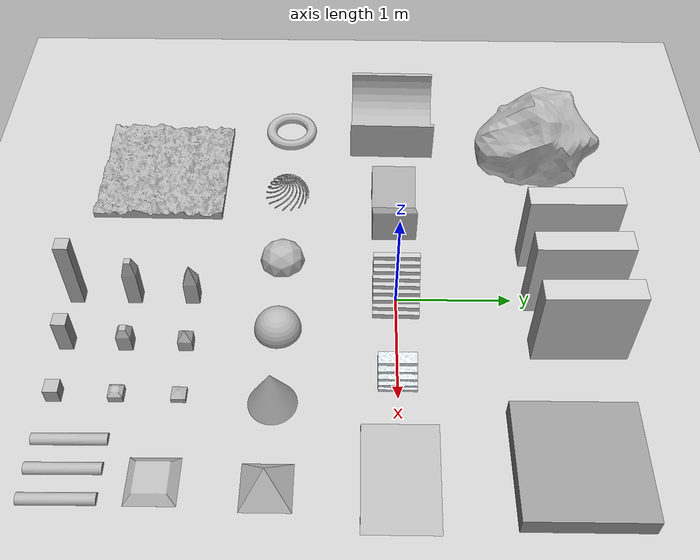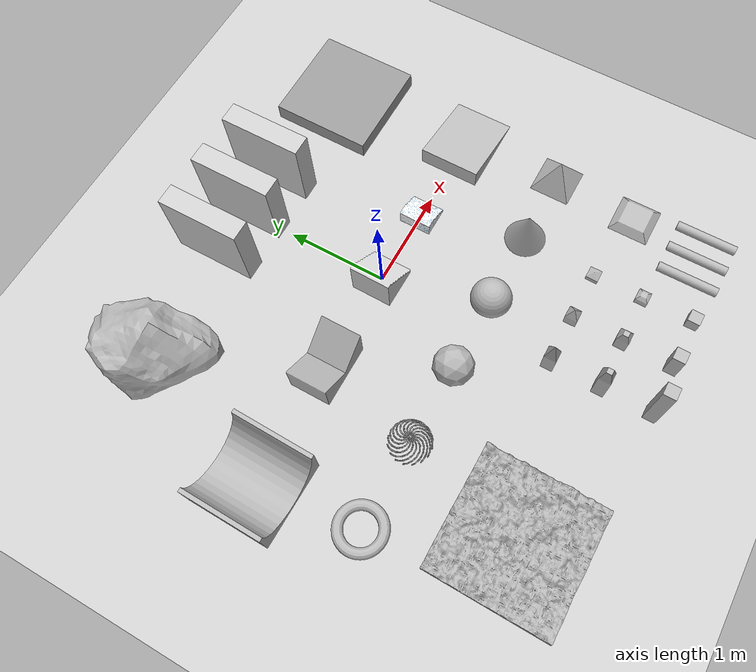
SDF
<sdf version="1.7">
 <world name="default">
  <light name="sun" type="directional">
   <pose>0 0 10 0 -0 0</pose>
   <diffuse>0.8 0.8 0.8 1</diffuse>
   <specular>0.2 0.2 0.2 1</specular>
   <attenuation>
    <range>1000</range>
    <constant>0.9</constant>
    <linear>0.01</linear>
    <quadratic>0.001</quadratic>
   </attenuation>
   <direction>-0.5 0.1 -0.9</direction>
   <spot><inner_angle>0</inner_angle><outer_angle>0</outer_angle><falloff>0</falloff></spot>
  </light>
  <model name="ground_plane">
   <static>1</static>
   <link name="link">
    <collision name="collision">
     <geometry><plane><normal>0 0 1</normal><size>0.032 0.032</size></plane></geometry>
     <surface>
      <contact><collide_bitmask>65535</collide_bitmask></contact>
      <friction><ode><mu>100</mu><mu2>50</mu2></ode></friction>
     </surface>
    </collision>
    <visual name="visual">
     <cast_shadows>0</cast_shadows>
     <geometry><plane><normal>0 0 1</normal><size>100 100</size></plane></geometry>
     <material>
      <script><uri>file://media/materials/scripts/gazebo.material</uri><name>Gazebo/Grey</name></script>
     </material>
    </visual>
   </link>
  </model>
  <gravity>0 0 -9.8</gravity>
  <magnetic_field>6e-06 2.3e-05 -4.2e-05</magnetic_field>
  <atmosphere type="adiabatic"/>
  <physics type="ode">
   <max_step_size>0.001</max_step_size>
   <real_time_factor>1</real_time_factor>
   <real_time_update_rate>1000</real_time_update_rate>
  </physics>
  <scene><ambient>0.4 0.4 0.4 1</ambient><background>0.7 0.7 0.7 1</background><shadows>1</shadows></scene>
  <spherical_coordinates>
   <surface_model>EARTH_WGS84</surface_model>
   <latitude_deg>0</latitude_deg>
   <longitude_deg>0</longitude_deg>
   <elevation>0</elevation>
   <heading_deg>0</heading_deg>
  </spherical_coordinates>
  <model name="parede">
   <link name="link">
    <collision name="collision">
     <geometry><mesh><scale>0.2 0.2 0.2</scale><uri>model://parede/meshes/parede.stl</uri></mesh></geometry>
    </collision>
    <visual name="visual">
     <geometry><mesh><scale>0.2 0.2 0.2</scale><uri>model://parede/meshes/parede.dae</uri></mesh></geometry>
    </visual>
    <inertial>
     <inertia><ixx>1</ixx><ixy>0</ixy><ixz>0</ixz><iyy>1</iyy><iyz>0</iyz><izz>1</izz></inertia>
     <mass>1</mass>
    </inertial>
   </link>
   <pose>0.5 1.4998 0.399995 0 -0 1.57896</pose>
  </model>
  <model name="parede_clone_0">
   <link name="link">
    <collision name="collision">
     <geometry><mesh><scale>0.2 0.2 0.2</scale><uri>model://parede/meshes/parede.stl</uri></mesh></geometry>
    </collision>
    <visual name="visual">
     <geometry><mesh><scale>0.2 0.2 0.2</scale><uri>model://parede/meshes/parede.dae</uri></mesh></geometry>
    </visual>
    <inertial>
     <inertia><ixx>1</ixx><ixy>0</ixy><ixz>0</ixz><iyy>1</iyy><iyz>0</iyz><izz>1</izz></inertia>
     <mass>1</mass>
    </inertial>
   </link>
   <pose>0 1.49981 0.399995 0 -0 1.57905</pose>
  </model>
  <model name="parede_clone_0_clone">
   <link name="link">
    <collision name="collision">
     <geometry><mesh><scale>0.2 0.2 0.2</scale><uri>model://parede/meshes/parede.stl</uri></mesh></geometry>
    </collision>
    <visual name="visual">
     <geometry><mesh><scale>0.2 0.2 0.2</scale><uri>model://parede/meshes/parede.dae</uri></mesh></geometry>
    </visual>
    <inertial>
     <inertia><ixx>1</ixx><ixy>0</ixy><ixz>0</ixz><iyy>1</iyy><iyz>0</iyz><izz>1</izz></inertia>
     <mass>1</mass>
    </inertial>
   </link>
   <pose>-0.5 1.4998 0.399995 0 -0 1.57902</pose>
  </model>
  <model name="chao_aspero">
   <link name="link">
    <collision name="collision">
     <geometry>
      <mesh><scale>0.6 0.6 0.6</scale><uri>model://chao_aspero/meshes/chao_aspero.stl</uri></mesh>
     </geometry>
    </collision>
    <visual name="visual">
     <geometry>
      <mesh><scale>0.6 0.6 0.6</scale><uri>model://chao_aspero/meshes/chao_aspero.dae</uri></mesh>
     </geometry>
    </visual>
    <inertial>
     <inertia><ixx>1</ixx><ixy>0</ixy><ixz>0</ixz><iyy>1</iyy><iyz>0</iyz><izz>1</izz></inertia>
     <mass>1</mass>
    </inertial>
   </link>
   <pose>-1.54118 -2.18697 0.06 0 -0 -0.010693</pose>
  </model>
  <model name="pilar">
   <link name="link">
    <collision name="collision">
     <geometry><mesh><scale>0.2 0.2 0.35</scale><uri>model://pilar/meshes/pilar.stl</uri></mesh></geometry>
    </collision>
    <visual name="visual">
     <geometry><mesh><scale>0.2 0.2 0.35</scale><uri>model://pilar/meshes/pilar.dae</uri></mesh></geometry>
    </visual>
    <inertial>
     <inertia><ixx>1</ixx><ixy>0</ixy><ixz>0</ixz><iyy>1</iyy><iyz>0</iyz><izz>1</izz></inertia>
     <mass>1</mass>
    </inertial>
   </link>
   <pose>0 -2.75 0.35 -1e-06 1e-06 0.00395</pose>
  </model>
  <model name="pilar_clone">
   <link name="link">
    <collision name="collision">
     <geometry><mesh><scale>0.2 0.2 0.17</scale><uri>model://pilar/meshes/pilar.stl</uri></mesh></geometry>
    </collision>
    <visual name="visual">
     <geometry><mesh><scale>0.2 0.2 0.17</scale><uri>model://pilar/meshes/pilar.dae</uri></mesh></geometry>
    </visual>
    <inertial>
     <inertia><ixx>1</ixx><ixy>0</ixy><ixz>0</ixz><iyy>1</iyy><iyz>0</iyz><izz>1</izz></inertia>
     <mass>1</mass>
    </inertial>
   </link>
   <pose>0.495132 -2.74517 0.169991 1e-06 1e-06 -0.005708</pose>
  </model>
  <model name="pilar_2">
   <link name="link">
    <collision name="collision">
     <geometry><mesh><scale>0.2 0.2 0.35</scale><uri>model://pilar_2/meshes/pilar_2.stl</uri></mesh></geometry>
    </collision>
    <visual name="visual">
     <geometry><mesh><scale>0.2 0.2 0.35</scale><uri>model://pilar_2/meshes/pilar_2.dae</uri></mesh></geometry>
    </visual>
    <inertial>
     <inertia><ixx>1</ixx><ixy>0</ixy><ixz>0</ixz><iyy>1</iyy><iyz>0</iyz><izz>1</izz></inertia>
     <mass>1</mass>
    </inertial>
   </link>
   <pose>-1e-06 -2.25 0.244991 -2e-06 -1e-06 0.005058</pose>
  </model>
  <model name="pilar_2_clone">
   <link name="link">
    <collision name="collision">
     <geometry><mesh><scale>0.2 0.2 0.07</scale><uri>model://pilar_2/meshes/pilar_2.stl</uri></mesh></geometry>
    </collision>
    <visual name="visual">
     <geometry><mesh><scale>0.2 0.2 0.07</scale><uri>model://pilar_2/meshes/pilar_2.dae</uri></mesh></geometry>
    </visual>
    <inertial>
     <inertia><ixx>1</ixx><ixy>0</ixy><ixz>0</ixz><iyy>1</iyy><iyz>0</iyz><izz>1</izz></inertia>
     <mass>1</mass>
    </inertial>
   </link>
   <pose>0.999999 -2.25 0.048991 -4e-06 -1e-06 0.002488</pose>
  </model>
  <model name="pilar_3">
   <link name="link">
    <collision name="collision">
     <geometry><mesh><scale>0.2 0.2 0.35</scale><uri>model://pilar_3/meshes/pilar_3.stl</uri></mesh></geometry>
    </collision>
    <visual name="visual">
     <geometry><mesh><scale>0.2 0.2 0.35</scale><uri>model://pilar_3/meshes/pilar_3.dae</uri></mesh></geometry>
    </visual>
    <inertial>
     <inertia><ixx>1</ixx><ixy>0</ixy><ixz>0</ixz><iyy>1</iyy><iyz>0</iyz><izz>1</izz></inertia>
     <mass>1</mass>
    </inertial>
   </link>
   <pose>-4e-06 -1.75 0.24499 0 -1e-06 0.00505</pose>
  </model>
  <model name="pilar_3_clone">
   <link name="link">
    <collision name="collision">
     <geometry><mesh><scale>0.2 0.2 0.17</scale><uri>model://pilar_3/meshes/pilar_3.stl</uri></mesh></geometry>
    </collision>
    <visual name="visual">
     <geometry><mesh><scale>0.2 0.2 0.17</scale><uri>model://pilar_3/meshes/pilar_3.dae</uri></mesh></geometry>
    </visual>
    <inertial>
     <inertia><ixx>1</ixx><ixy>0</ixy><ixz>0</ixz><iyy>1</iyy><iyz>0</iyz><izz>1</izz></inertia>
     <mass>1</mass>
    </inertial>
   </link>
   <pose>0.499998 -1.75 0.118996 1e-06 -1e-06 0.003687</pose>
  </model>
  <model name="lombada">
   <link name="link">
    <collision name="collision">
     <geometry><mesh><scale>0.2 0.2 0.2</scale><uri>model://lombada/meshes/lombada.stl</uri></mesh></geometry>
    </collision>
    <visual name="visual">
     <geometry><mesh><scale>0.2 0.2 0.2</scale><uri>model://lombada/meshes/lombada.dae</uri></mesh></geometry>
    </visual>
    <inertial>
     <inertia><ixx>1</ixx><ixy>0</ixy><ixz>0</ixz><iyy>1</iyy><iyz>0</iyz><izz>1</izz></inertia>
     <mass>1</mass>
    </inertial>
   </link>
   <pose>1.4 -2.54756 -5e-06 0 -1e-06 0.00715</pose>
  </model>
  <model name="rampa_dupla">
   <link name="link">
    <collision name="collision">
     <geometry>
      <mesh><scale>0.2 0.2 0.2</scale><uri>model://rampa_dupla/meshes/rampa_dupla.stl</uri></mesh>
     </geometry>
    </collision>
    <visual name="visual">
     <geometry>
      <mesh><scale>0.2 0.2 0.2</scale><uri>model://rampa_dupla/meshes/rampa_dupla.dae</uri></mesh>
     </geometry>
    </visual>
    <inertial>
     <inertia><ixx>1</ixx><ixy>0</ixy><ixz>0</ixz><iyy>1</iyy><iyz>0</iyz><izz>1</izz></inertia>
     <mass>1</mass>
    </inertial>
   </link>
   <pose>-1 7e-06 -0.090001 -1e-06 1e-06 -1.56676</pose>
  </model>
  <model name="rampa_dupla_2">
   <link name="link">
    <collision name="collision">
     <geometry>
      <mesh><scale>0.2 0.2 0.2</scale><uri>model://rampa_dupla_2/meshes/rampa_dupla_2.stl</uri></mesh>
     </geometry>
    </collision>
    <visual name="visual">
     <geometry>
      <mesh><scale>0.2 0.2 0.2</scale><uri>model://rampa_dupla_2/meshes/rampa_dupla_2.dae</uri></mesh>
     </geometry>
    </visual>
    <inertial>
     <inertia><ixx>1</ixx><ixy>0</ixy><ixz>0</ixz><iyy>1</iyy><iyz>0</iyz><izz>1</izz></inertia>
     <mass>1</mass>
    </inertial>
   </link>
   <pose>-2.2 7e-06 -1e-06 0 0 -0.016276</pose>
  </model>
  <model name="escada">
   <link name="link">
    <collision name="collision">
     <geometry><mesh><scale>0.2 0.2 0.2</scale><uri>model://escada/meshes/escada.stl</uri></mesh></geometry>
    </collision>
    <visual name="visual">
     <geometry><mesh><scale>0.2 0.2 0.2</scale><uri>model://escada/meshes/escada.dae</uri></mesh></geometry>
    </visual>
    <inertial>
     <inertia><ixx>1</ixx><ixy>0</ixy><ixz>0</ixz><iyy>1</iyy><iyz>0</iyz><izz>1</izz></inertia>
     <mass>1</mass>
    </inertial>
   </link>
   <pose>0.8 0.010047 -0 0 -0 1.57075</pose>
  </model>
  <model name="escada_2">
   <link name="link">
    <collision name="collision">
     <geometry><mesh><scale>0.2 0.2 0.2</scale><uri>model://escada_2/meshes/escada_2.stl</uri></mesh></geometry>
    </collision>
    <visual name="visual">
     <geometry><mesh><scale>0.2 0.2 0.2</scale><uri>model://escada_2/meshes/escada_2.dae</uri></mesh></geometry>
    </visual>
    <inertial>
     <inertia><ixx>1</ixx><ixy>0</ixy><ixz>0</ixz><iyy>1</iyy><iyz>0</iyz><izz>1</izz></inertia>
     <mass>1</mass>
    </inertial>
   </link>
   <pose>-7e-06 -1.7e-05 0.199992 1.2e-05 4e-06 3.13228</pose>
  </model>
  <model name="lombada_clone">
   <link name="link">
    <collision name="collision">
     <geometry><mesh><scale>0.2 0.2 0.2</scale><uri>model://lombada/meshes/lombada.stl</uri></mesh></geometry>
    </collision>
    <visual name="visual">
     <geometry><mesh><scale>0.2 0.2 0.2</scale><uri>model://lombada/meshes/lombada.dae</uri></mesh></geometry>
    </visual>
    <inertial>
     <inertia><ixx>1</ixx><ixy>0</ixy><ixz>0</ixz><iyy>1</iyy><iyz>0</iyz><izz>1</izz></inertia>
     <mass>1</mass>
    </inertial>
   </link>
   <pose>1.65 -2.547 -6e-06 -0 -1e-06 0.00584</pose>
  </model>
  <model name="prisma_trapezoidal">
   <link name="link">
    <collision name="collision">
     <geometry>
      <mesh><scale>0.2 0.2 0.2</scale><uri>model://prisma_trapezoidal/meshes/prisma_trapezoidal.stl</uri></mesh>
     </geometry>
    </collision>
    <visual name="visual">
     <geometry>
      <mesh><scale>0.2 0.2 0.2</scale><uri>model://prisma_trapezoidal/meshes/prisma_trapezoidal.dae</uri></mesh>
     </geometry>
    </visual>
    <inertial>
     <inertia><ixx>1</ixx><ixy>0</ixy><ixz>0</ixz><iyy>1</iyy><iyz>0</iyz><izz>1</izz></inertia>
     <mass>1</mass>
    </inertial>
   </link>
   <pose>1.75 -1.858 0.000205 0 -0 0.003474</pose>
  </model>
  <model name="meia_esfera">
   <link name="link">
    <collision name="collision">
     <geometry>
      <mesh><scale>0.2 0.2 0.2</scale><uri>model://meia_esfera/meshes/meia_esfera.stl</uri></mesh>
     </geometry>
    </collision>
    <visual name="visual">
     <geometry>
      <mesh><scale>0.2 0.2 0.2</scale><uri>model://meia_esfera/meshes/meia_esfera.dae</uri></mesh>
     </geometry>
    </visual>
    <inertial>
     <inertia><ixx>1</ixx><ixy>0</ixy><ixz>0</ixz><iyy>1</iyy><iyz>0</iyz><izz>1</izz></inertia>
     <mass>1</mass>
    </inertial>
   </link>
   <pose>0.32596 -1.00018 2e-06 1e-06 1.2e-05 -0.000544</pose>
  </model>
  <model name="ico_esfera">
   <link name="link">
    <collision name="collision">
     <geometry>
      <mesh><scale>0.2 0.2 0.2</scale><uri>model://ico_esfera/meshes/ico_esfera.stl</uri></mesh>
     </geometry>
    </collision>
    <visual name="visual">
     <geometry>
      <mesh><scale>0.2 0.2 0.2</scale><uri>model://ico_esfera/meshes/ico_esfera.dae</uri></mesh>
     </geometry>
    </visual>
    <inertial>
     <inertia><ixx>1</ixx><ixy>0</ixy><ixz>0</ixz><iyy>1</iyy><iyz>0</iyz><izz>1</izz></inertia>
     <mass>1</mass>
    </inertial>
   </link>
   <pose>-0.438321 -1.00196 0 2e-06 -3e-06 0.008542</pose>
  </model>
  <model name="esfera_personalizada_2">
   <link name="link">
    <collision name="collision">
     <geometry>
      <mesh>
       <scale>0.2 0.2 0.2</scale>
       <uri>model://esfera_personalizada_2/meshes/esfera_personalizada_2.stl</uri>
      </mesh>
     </geometry>
    </collision>
    <visual name="visual">
     <geometry>
      <mesh>
       <scale>0.2 0.2 0.2</scale>
       <uri>model://esfera_personalizada_2/meshes/esfera_personalizada_2.dae</uri>
      </mesh>
     </geometry>
    </visual>
    <inertial>
     <inertia><ixx>1</ixx><ixy>0</ixy><ixz>0</ixz><iyy>1</iyy><iyz>0</iyz><izz>1</izz></inertia>
     <mass>1</mass>
    </inertial>
   </link>
   <pose>-1.249 -1.00007 0.003909 1e-06 -1e-06 -0.000455</pose>
  </model>
  <model name="piramide">
   <link name="link">
    <collision name="collision">
     <geometry><mesh><scale>0.2 0.2 0.2</scale><uri>model://piramide/meshes/piramide.stl</uri></mesh></geometry>
    </collision>
    <visual name="visual">
     <geometry><mesh><scale>0.2 0.2 0.2</scale><uri>model://piramide/meshes/piramide.dae</uri></mesh></geometry>
    </visual>
    <inertial>
     <inertia><ixx>1</ixx><ixy>0</ixy><ixz>0</ixz><iyy>1</iyy><iyz>0</iyz><izz>1</izz></inertia>
     <mass>1</mass>
    </inertial>
   </link>
   <pose>1.79089 -1.00001 0.199999 -0 -0 -1.4e-05</pose>
  </model>
  <model name="anel">
   <link name="link">
    <collision name="collision">
     <geometry><mesh><scale>0.2 0.2 0.2</scale><uri>model://anel/meshes/anel.stl</uri></mesh></geometry>
    </collision>
    <visual name="visual">
     <geometry><mesh><scale>0.2 0.2 0.2</scale><uri>model://anel/meshes/anel.dae</uri></mesh></geometry>
    </visual>
    <inertial>
     <inertia><ixx>1</ixx><ixy>0</ixy><ixz>0</ixz><iyy>1</iyy><iyz>0</iyz><izz>1</izz></inertia>
     <mass>1</mass>
    </inertial>
   </link>
   <pose>-2.1 -1 0.050003 1.1e-05 -1.1e-05 0.385627</pose>
  </model>
  <model name="pilar_clone_clone">
   <link name="link">
    <collision name="collision">
     <geometry><mesh><scale>0.2 0.2 0.07</scale><uri>model://pilar/meshes/pilar.stl</uri></mesh></geometry>
    </collision>
    <visual name="visual">
     <geometry><mesh><scale>0.2 0.2 0.07</scale><uri>model://pilar/meshes/pilar.dae</uri></mesh></geometry>
    </visual>
    <inertial>
     <inertia><ixx>1</ixx><ixy>0</ixy><ixz>0</ixz><iyy>1</iyy><iyz>0</iyz><izz>1</izz></inertia>
     <mass>1</mass>
    </inertial>
   </link>
   <pose>1 -2.75 0.069991 0 1e-06 -0.00617</pose>
  </model>
  <model name="pilar_2_clone_clone">
   <link name="link">
    <collision name="collision">
     <geometry><mesh><scale>0.2 0.2 0.17</scale><uri>model://pilar_2/meshes/pilar_2.stl</uri></mesh></geometry>
    </collision>
    <visual name="visual">
     <geometry><mesh><scale>0.2 0.2 0.17</scale><uri>model://pilar_2/meshes/pilar_2.dae</uri></mesh></geometry>
    </visual>
    <inertial>
     <inertia><ixx>1</ixx><ixy>0</ixy><ixz>0</ixz><iyy>1</iyy><iyz>0</iyz><izz>1</izz></inertia>
     <mass>1</mass>
    </inertial>
   </link>
   <pose>0.499995 -2.25 0.11899 -0 -1e-06 0.00246</pose>
  </model>
  <model name="pilar_3_clone_clone">
   <link name="link">
    <collision name="collision">
     <geometry><mesh><scale>0.2 0.2 0.07</scale><uri>model://pilar_3/meshes/pilar_3.stl</uri></mesh></geometry>
    </collision>
    <visual name="visual">
     <geometry><mesh><scale>0.2 0.2 0.07</scale><uri>model://pilar_3/meshes/pilar_3.dae</uri></mesh></geometry>
    </visual>
    <inertial>
     <inertia><ixx>1</ixx><ixy>0</ixy><ixz>0</ixz><iyy>1</iyy><iyz>0</iyz><izz>1</izz></inertia>
     <mass>1</mass>
    </inertial>
   </link>
   <pose>0.999333 -1.75 0.049311 1e-06 -0.00523 -0.010626</pose>
  </model>
  <model name="lombada_clone_clone">
   <link name="link">
    <collision name="collision">
     <geometry><mesh><scale>0.2 0.2 0.2</scale><uri>model://lombada/meshes/lombada.stl</uri></mesh></geometry>
    </collision>
    <visual name="visual">
     <geometry><mesh><scale>0.2 0.2 0.2</scale><uri>model://lombada/meshes/lombada.dae</uri></mesh></geometry>
    </visual>
    <inertial>
     <inertia><ixx>1</ixx><ixy>0</ixy><ixz>0</ixz><iyy>1</iyy><iyz>0</iyz><izz>1</izz></inertia>
     <mass>1</mass>
    </inertial>
   </link>
   <pose>1.9 -2.547 -4e-06 -0 -2e-06 0.00584</pose>
  </model>
  <model name="cone">
   <link name="link">
    <collision name="collision">
     <geometry><mesh><scale>0.2 0.2 0.2</scale><uri>model://cone/meshes/cone.stl</uri></mesh></geometry>
    </collision>
    <visual name="visual">
     <geometry><mesh><scale>0.2 0.2 0.2</scale><uri>model://cone/meshes/cone.dae</uri></mesh></geometry>
    </visual>
    <inertial>
     <inertia><ixx>1</ixx><ixy>0</ixy><ixz>0</ixz><iyy>1</iyy><iyz>0</iyz><izz>1</izz></inertia>
     <mass>1</mass>
    </inertial>
   </link>
   <pose>1.05358 -1.00044 0.200001 3e-06 -2e-06 0.072058</pose>
  </model>
  <model name="rampa">
   <link name="link">
    <collision name="collision">
     <geometry><mesh><scale>0.2 0.2 0.2</scale><uri>model://rampa/meshes/rampa.stl</uri></mesh></geometry>
    </collision>
    <visual name="visual">
     <geometry><mesh><scale>0.2 0.2 0.2</scale><uri>model://rampa/meshes/rampa.dae</uri></mesh></geometry>
    </visual>
    <inertial>
     <inertia><ixx>1</ixx><ixy>0</ixy><ixz>0</ixz><iyy>1</iyy><iyz>0</iyz><izz>1</izz></inertia>
     <mass>1</mass>
    </inertial>
   </link>
   <pose>1.75 9e-06 -0.100006 2e-06 -1e-06 -3.1415</pose>
  </model>
  <model name="rocha">
   <link name="link">
    <collision name="collision">
     <geometry><mesh><scale>0.7 0.7 0.7</scale><uri>model://rocha/meshes/rocha.stl</uri></mesh></geometry>
    </collision>
    <visual name="visual">
     <geometry><mesh><scale>0.7 0.7 0.7</scale><uri>model://rocha/meshes/rocha.dae</uri></mesh></geometry>
    </visual>
    <inertial>
     <inertia><ixx>1</ixx><ixy>0</ixy><ixz>0</ixz><iyy>1</iyy><iyz>0</iyz><izz>1</izz></inertia>
     <mass>1</mass>
    </inertial>
   </link>
   <pose>-1.68106 1.34795 0.362731 0.447272 0.222388 0.168264</pose>
  </model>
  <model name="unit_box">
   <link name="link">
    <inertial>
     <mass>1</mass>
     <inertia>
      <ixx>0.166667</ixx>
      <ixy>0</ixy>
      <ixz>0</ixz>
      <iyy>0.166667</iyy>
      <iyz>0</iyz>
      <izz>0.166667</izz>
     </inertia>
    </inertial>
    <visual name="visual">
     <geometry><box><size>1 1 0.173075</size></box></geometry>
     <material>
      <script><name>Gazebo/Grey</name><uri>file://media/materials/scripts/gazebo.material</uri></script>
      <shader type="pixel"><normal_map>__default__</normal_map></shader>
      <ambient>0.3 0.3 0.3 1</ambient>
      <diffuse>0.7 0.7 0.7 1</diffuse>
      <specular>0.01 0.01 0.01 1</specular>
      <emissive>0 0 0 1</emissive>
     </material>
    </visual>
    <collision name="collision">
     <geometry><box><size>1 1 0.173075</size></box></geometry>
     <surface>
      <friction>
       <ode><mu>2</mu><mu2>2</mu2><fdir1>0 0 0</fdir1><slip1>0</slip1><slip2>0</slip2></ode>
       <torsional>
        <coefficient>1</coefficient>
        <patch_radius>0</patch_radius>
        <surface_radius>0</surface_radius>
        <use_patch_radius>1</use_patch_radius>
        <ode><slip>0</slip></ode>
       </torsional>
      </friction>
      <bounce><restitution_coefficient>0</restitution_coefficient><threshold>1e+06</threshold></bounce>
      <contact>
       <collide_without_contact>0</collide_without_contact>
       <collide_without_contact_bitmask>1</collide_without_contact_bitmask>
       <collide_bitmask>1</collide_bitmask>
       <ode>
        <soft_cfm>0</soft_cfm>
        <soft_erp>0.2</soft_erp>
        <kp>1e+13</kp>
        <kd>1</kd>
        <max_vel>0.01</max_vel>
        <min_depth>0</min_depth>
       </ode>
       <bullet>
        <split_impulse>1</split_impulse>
        <split_impulse_penetration_threshold>-0.01</split_impulse_penetration_threshold>
        <soft_cfm>0</soft_cfm>
        <soft_erp>0.2</soft_erp>
        <kp>1e+13</kp>
        <kd>1</kd>
       </bullet>
      </contact>
     </surface>
    </collision>
   </link>
   <static>0</static>
   <pose>1.61514 1.35203 0.086538 0 -0 0</pose>
  </model>
 </world>
</sdf>
